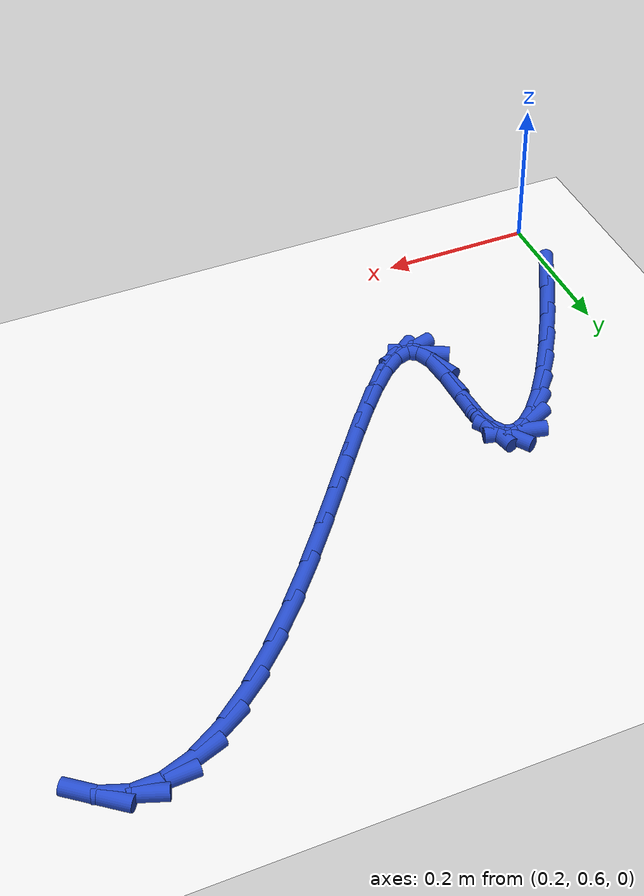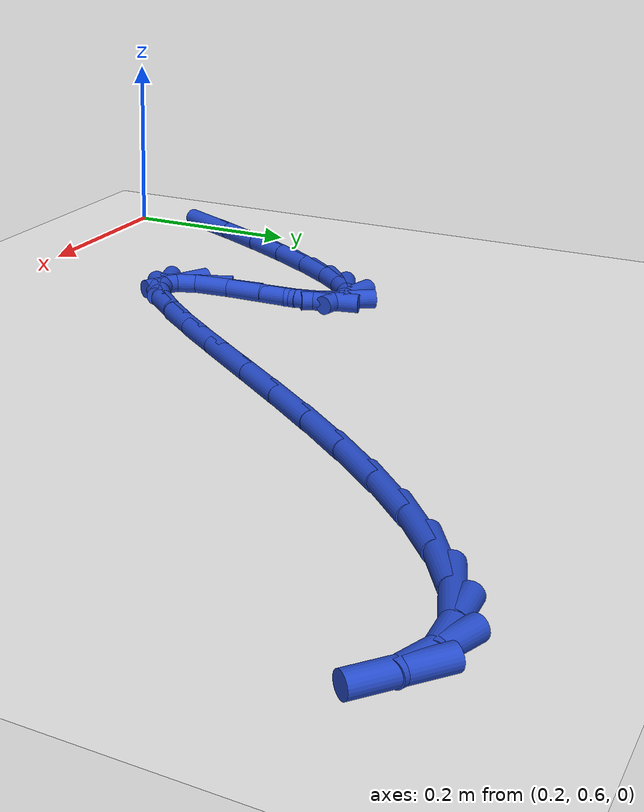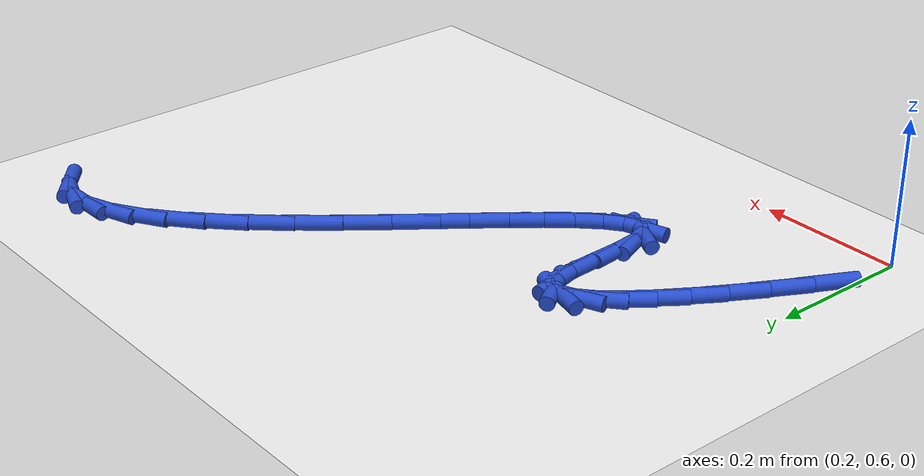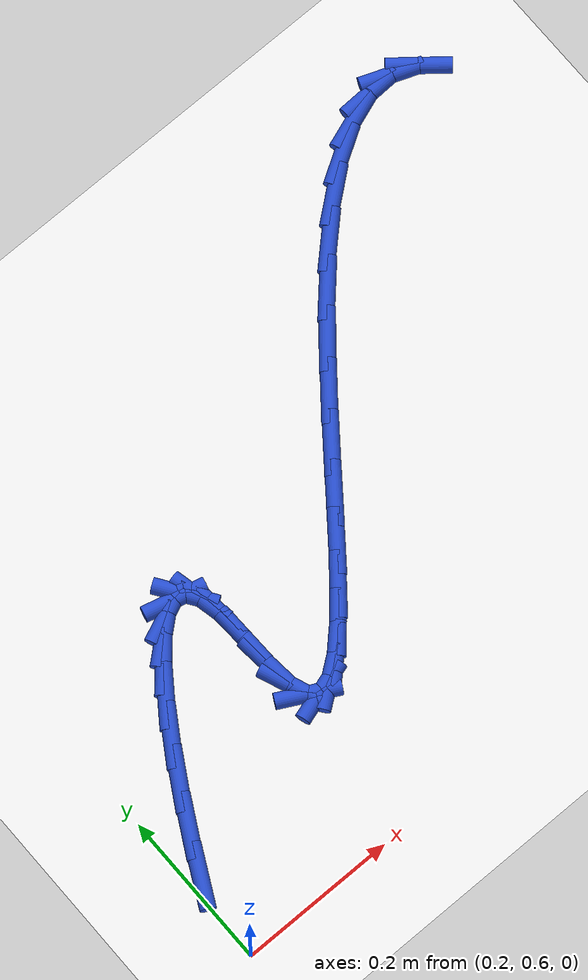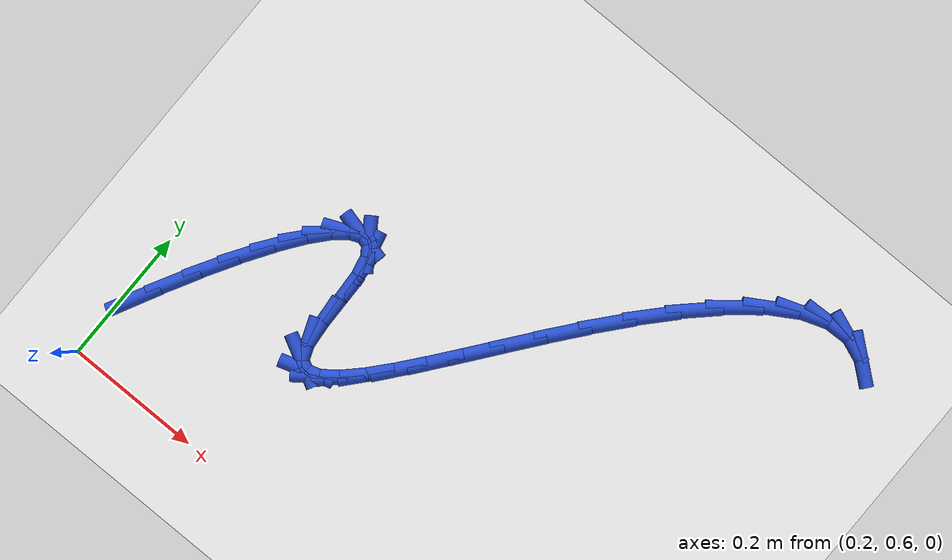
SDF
<sdf version="1.6">
 <world name="default">
  <model name="ground_plane">
   <static>1</static>
   <link name="link">
    <collision name="collision">
     <geometry><plane><normal>0 0 1</normal><size>100 100</size></plane></geometry>
     <surface><friction><ode><mu>100</mu><mu2>50</mu2></ode></friction></surface>
    </collision>
    <visual name="visual">
     <cast_shadows>0</cast_shadows>
     <geometry><plane><normal>0 0 1</normal><size>100 100</size></plane></geometry>
     <material>
      <script><uri>file://media/materials/scripts/gazebo.material</uri><name>Gazebo/WhiteGlow</name></script>
     </material>
    </visual>
   </link>
  </model>
  <model name="line">
   <link name="link_15">
    <pose>0.2144821899932202 0.7067453006263108 0.01 0 1.57 1.0963529561204812</pose>
    <collision name="collision">
     <geometry><cylinder><radius>0.01</radius><length>0.08</length></cylinder></geometry>
    </collision>
    <visual name="visual">
     <material>
      <script><name>Gazebo/Blue</name><uri>file://media/materials/scripts/gazebo.material</uri></script>
     </material>
     <geometry><cylinder><radius>0.01</radius><length>0.08</length></cylinder></geometry>
    </visual>
   </link>
   <link name="link_16">
    <pose>0.24165540462102134 0.7596558981493867 0.01 0 1.57 1.0709503467464274</pose>
    <collision name="collision">
     <geometry><cylinder><radius>0.01</radius><length>0.08</length></cylinder></geometry>
    </collision>
    <visual name="visual">
     <material>
      <script><name>Gazebo/Blue</name><uri>file://media/materials/scripts/gazebo.material</uri></script>
     </material>
     <geometry><cylinder><radius>0.01</radius><length>0.08</length></cylinder></geometry>
    </visual>
   </link>
   <link name="link_17">
    <pose>0.26856329604825185 0.8089284988810272 0.01 0 1.57 1.039733929315308</pose>
    <collision name="collision">
     <geometry><cylinder><radius>0.01</radius><length>0.08</length></cylinder></geometry>
    </collision>
    <visual name="visual">
     <material>
      <script><name>Gazebo/Blue</name><uri>file://media/materials/scripts/gazebo.material</uri></script>
     </material>
     <geometry><cylinder><radius>0.01</radius><length>0.08</length></cylinder></geometry>
    </visual>
   </link>
   <link name="link_18">
    <pose>0.2947966161264923 0.8535927408835512 0.01 0 1.57 0.9990408790225557</pose>
    <collision name="collision">
     <geometry><cylinder><radius>0.01</radius><length>0.08</length></cylinder></geometry>
    </collision>
    <visual name="visual">
     <material>
      <script><name>Gazebo/Blue</name><uri>file://media/materials/scripts/gazebo.material</uri></script>
     </material>
     <geometry><cylinder><radius>0.01</radius><length>0.08</length></cylinder></geometry>
    </visual>
   </link>
   <link name="link_19">
    <pose>0.319946116707323 0.8926782622192776 0.01 0 1.57 0.9421293417932</pose>
    <collision name="collision">
     <geometry><cylinder><radius>0.01</radius><length>0.08</length></cylinder></geometry>
    </collision>
    <visual name="visual">
     <material>
      <script><name>Gazebo/Blue</name><uri>file://media/materials/scripts/gazebo.material</uri></script>
     </material>
     <geometry><cylinder><radius>0.01</radius><length>0.08</length></cylinder></geometry>
    </visual>
   </link>
   <link name="link_20">
    <pose>0.3436025496423244 0.9252147009505244 0.01 0 1.57 0.8550479765291604</pose>
    <collision name="collision">
     <geometry><cylinder><radius>0.01</radius><length>0.08</length></cylinder></geometry>
    </collision>
    <visual name="visual">
     <material>
      <script><name>Gazebo/Blue</name><uri>file://media/materials/scripts/gazebo.material</uri></script>
     </material>
     <geometry><cylinder><radius>0.01</radius><length>0.08</length></cylinder></geometry>
    </visual>
   </link>
   <link name="link_21">
    <pose>0.36535666678307677 0.9502316951396105 0.01 0 1.57 0.7045244455720923</pose>
    <collision name="collision">
     <geometry><cylinder><radius>0.01</radius><length>0.08</length></cylinder></geometry>
    </collision>
    <visual name="visual">
     <material>
      <script><name>Gazebo/Blue</name><uri>file://media/materials/scripts/gazebo.material</uri></script>
     </material>
     <geometry><cylinder><radius>0.01</radius><length>0.08</length></cylinder></geometry>
    </visual>
   </link>
   <link name="link_22">
    <pose>0.38479921998116073 0.9667588828488549 0.01 0 1.57 0.39985695043769515</pose>
    <collision name="collision">
     <geometry><cylinder><radius>0.01</radius><length>0.08</length></cylinder></geometry>
    </collision>
    <visual name="visual">
     <material>
      <script><name>Gazebo/Blue</name><uri>file://media/materials/scripts/gazebo.material</uri></script>
     </material>
     <geometry><cylinder><radius>0.01</radius><length>0.08</length></cylinder></geometry>
    </visual>
   </link>
   <link name="link_23">
    <pose>0.4015209610881564 0.9738259021405755 0.01 0 1.57 -0.2425945336687161</pose>
    <collision name="collision">
     <geometry><cylinder><radius>0.01</radius><length>0.08</length></cylinder></geometry>
    </collision>
    <visual name="visual">
     <material>
      <script><name>Gazebo/Blue</name><uri>file://media/materials/scripts/gazebo.material</uri></script>
     </material>
     <geometry><cylinder><radius>0.01</radius><length>0.08</length></cylinder></geometry>
    </visual>
   </link>
   <link name="link_24">
    <pose>0.4151126419556447 0.9704623910770924 0.01 0 1.57 -0.973037345270926</pose>
    <collision name="collision">
     <geometry><cylinder><radius>0.01</radius><length>0.08</length></cylinder></geometry>
    </collision>
    <visual name="visual">
     <material>
      <script><name>Gazebo/Blue</name><uri>file://media/materials/scripts/gazebo.material</uri></script>
     </material>
     <geometry><cylinder><radius>0.01</radius><length>0.08</length></cylinder></geometry>
    </visual>
   </link>
   <link name="link_25">
    <pose>0.4251650144352053 0.9556979877207223 0.01 0 1.57 -1.3495417607274645</pose>
    <collision name="collision">
     <geometry><cylinder><radius>0.01</radius><length>0.08</length></cylinder></geometry>
    </collision>
    <visual name="visual">
     <material>
      <script><name>Gazebo/Blue</name><uri>file://media/materials/scripts/gazebo.material</uri></script>
     </material>
     <geometry><cylinder><radius>0.01</radius><length>0.08</length></cylinder></geometry>
    </visual>
   </link>
   <link name="link_26">
    <pose>0.431268830378419 0.9285623301337849 0.01 0 1.57 -1.5131103198542823</pose>
    <collision name="collision">
     <geometry><cylinder><radius>0.01</radius><length>0.08</length></cylinder></geometry>
    </collision>
    <visual name="visual">
     <material>
      <script><name>Gazebo/Blue</name><uri>file://media/materials/scripts/gazebo.material</uri></script>
     </material>
     <geometry><cylinder><radius>0.01</radius><length>0.08</length></cylinder></geometry>
    </visual>
   </link>
   <link name="link_27">
    <pose>0.43352125430816163 0.8895593717146986 0.01 0 1.57 -1.54504843713999</pose>
    <collision name="collision">
     <geometry><cylinder><radius>0.01</radius><length>0.08</length></cylinder></geometry>
    </collision>
    <visual name="visual">
     <material>
      <script><name>Gazebo/Blue</name><uri>file://media/materials/scripts/gazebo.material</uri></script>
     </material>
     <geometry><cylinder><radius>0.01</radius><length>0.08</length></cylinder></geometry>
    </visual>
   </link>
   <link name="link_28">
    <pose>0.4346231514541276 0.846773199812439 0.01 0 1.57 -1.4744182706913913</pose>
    <collision name="collision">
     <geometry><cylinder><radius>0.01</radius><length>0.08</length></cylinder></geometry>
    </collision>
    <visual name="visual">
     <material>
      <script><name>Gazebo/Blue</name><uri>file://media/materials/scripts/gazebo.material</uri></script>
     </material>
     <geometry><cylinder><radius>0.01</radius><length>0.08</length></cylinder></geometry>
    </visual>
   </link>
   <link name="link_29">
    <pose>0.4381091562238803 0.8107151519353102 0.01 0 1.57 -1.1935511905397567</pose>
    <collision name="collision">
     <geometry><cylinder><radius>0.01</radius><length>0.08</length></cylinder></geometry>
    </collision>
    <visual name="visual">
     <material>
      <script><name>Gazebo/Blue</name><uri>file://media/materials/scripts/gazebo.material</uri></script>
     </material>
     <geometry><cylinder><radius>0.01</radius><length>0.08</length></cylinder></geometry>
    </visual>
   </link>
   <link name="link_30">
    <pose>0.44663193816883195 0.7892050272643987 0.01 0 1.57 -0.48249954833357417</pose>
    <collision name="collision">
     <geometry><cylinder><radius>0.01</radius><length>0.08</length></cylinder></geometry>
    </collision>
    <visual name="visual">
     <material>
      <script><name>Gazebo/Blue</name><uri>file://media/materials/scripts/gazebo.material</uri></script>
     </material>
     <geometry><cylinder><radius>0.01</radius><length>0.08</length></cylinder></geometry>
    </visual>
   </link>
   <link name="link_31">
    <pose>0.46022929452914607 0.7820828407072101 0.01 0 1.57 0.29980054642361725</pose>
    <collision name="collision">
     <geometry><cylinder><radius>0.01</radius><length>0.08</length></cylinder></geometry>
    </collision>
    <visual name="visual">
     <material>
      <script><name>Gazebo/Blue</name><uri>file://media/materials/scripts/gazebo.material</uri></script>
     </material>
     <geometry><cylinder><radius>0.01</radius><length>0.08</length></cylinder></geometry>
    </visual>
   </link>
   <link name="link_32">
    <pose>0.47845689958031923 0.7877173164949023 0.01 0 1.57 0.6420637533860102</pose>
    <collision name="collision">
     <geometry><cylinder><radius>0.01</radius><length>0.08</length></cylinder></geometry>
    </collision>
    <visual name="visual">
     <material>
      <script><name>Gazebo/Blue</name><uri>file://media/materials/scripts/gazebo.material</uri></script>
     </material>
     <geometry><cylinder><radius>0.01</radius><length>0.08</length></cylinder></geometry>
    </visual>
   </link>
   <link name="link_33">
    <pose>0.5008704275978486 0.8044771788586335 0.01 0 1.57 0.7872842441982141</pose>
    <collision name="collision">
     <geometry><cylinder><radius>0.01</radius><length>0.08</length></cylinder></geometry>
    </collision>
    <visual name="visual">
     <material>
      <script><name>Gazebo/Blue</name><uri>file://media/materials/scripts/gazebo.material</uri></script>
     </material>
     <geometry><cylinder><radius>0.01</radius><length>0.08</length></cylinder></geometry>
    </visual>
   </link>
   <link name="link_34">
    <pose>0.5270255528572307 0.830731152029561 0.01 0 1.57 0.8586422349914501</pose>
    <collision name="collision">
     <geometry><cylinder><radius>0.01</radius><length>0.08</length></cylinder></geometry>
    </collision>
    <visual name="visual">
     <material>
      <script><name>Gazebo/Blue</name><uri>file://media/materials/scripts/gazebo.material</uri></script>
     </material>
     <geometry><cylinder><radius>0.01</radius><length>0.08</length></cylinder></geometry>
    </visual>
   </link>
   <link name="link_35">
    <pose>0.5564779496339628 0.8648479602388438 0.01 0 1.57 0.8956527932185162</pose>
    <collision name="collision">
     <geometry><cylinder><radius>0.01</radius><length>0.08</length></cylinder></geometry>
    </collision>
    <visual name="visual">
     <material>
      <script><name>Gazebo/Blue</name><uri>file://media/materials/scripts/gazebo.material</uri></script>
     </material>
     <geometry><cylinder><radius>0.01</radius><length>0.08</length></cylinder></geometry>
    </visual>
   </link>
   <link name="link_36">
    <pose>0.5887832922035409 0.9051963277176385 0.01 0 1.57 0.9131736409051385</pose>
    <collision name="collision">
     <geometry><cylinder><radius>0.01</radius><length>0.08</length></cylinder></geometry>
    </collision>
    <visual name="visual">
     <material>
      <script><name>Gazebo/Blue</name><uri>file://media/materials/scripts/gazebo.material</uri></script>
     </material>
     <geometry><cylinder><radius>0.01</radius><length>0.08</length></cylinder></geometry>
    </visual>
   </link>
   <link name="link_37">
    <pose>0.6234972548414629 0.9501449786971046 0.01 0 1.57 0.9174844662995174</pose>
    <collision name="collision">
     <geometry><cylinder><radius>0.01</radius><length>0.08</length></cylinder></geometry>
    </collision>
    <visual name="visual">
     <material>
      <script><name>Gazebo/Blue</name><uri>file://media/materials/scripts/gazebo.material</uri></script>
     </material>
     <geometry><cylinder><radius>0.01</radius><length>0.08</length></cylinder></geometry>
    </visual>
   </link>
   <link name="link_38">
    <pose>0.6601755118232249 0.9980626374083987 0.01 0 1.57 0.9111654602945956</pose>
    <collision name="collision">
     <geometry><cylinder><radius>0.01</radius><length>0.08</length></cylinder></geometry>
    </collision>
    <visual name="visual">
     <material>
      <script><name>Gazebo/Blue</name><uri>file://media/materials/scripts/gazebo.material</uri></script>
     </material>
     <geometry><cylinder><radius>0.01</radius><length>0.08</length></cylinder></geometry>
    </visual>
   </link>
   <link name="link_39">
    <pose>0.6983737374243241 1.0473180280826797 0.01 0 1.57 0.8947566819144622</pose>
    <collision name="collision">
     <geometry><cylinder><radius>0.01</radius><length>0.08</length></cylinder></geometry>
    </collision>
    <visual name="visual">
     <material>
      <script><name>Gazebo/Blue</name><uri>file://media/materials/scripts/gazebo.material</uri></script>
     </material>
     <geometry><cylinder><radius>0.01</radius><length>0.08</length></cylinder></geometry>
    </visual>
   </link>
   <link name="link_40">
    <pose>0.7376476059202572 1.0962798749511051 0.01 0 1.57 0.8672445904938844</pose>
    <collision name="collision">
     <geometry><cylinder><radius>0.01</radius><length>0.08</length></cylinder></geometry>
    </collision>
    <visual name="visual">
     <material>
      <script><name>Gazebo/Blue</name><uri>file://media/materials/scripts/gazebo.material</uri></script>
     </material>
     <geometry><cylinder><radius>0.01</radius><length>0.08</length></cylinder></geometry>
    </visual>
   </link>
   <link name="link_41">
    <pose>0.7775527915865211 1.1433169022448335 0.01 0 1.57 0.8259243502828172</pose>
    <collision name="collision">
     <geometry><cylinder><radius>0.01</radius><length>0.08</length></cylinder></geometry>
    </collision>
    <visual name="visual">
     <material>
      <script><name>Gazebo/Blue</name><uri>file://media/materials/scripts/gazebo.material</uri></script>
     </material>
     <geometry><cylinder><radius>0.01</radius><length>0.08</length></cylinder></geometry>
    </visual>
   </link>
   <link name="link_42">
    <pose>0.8176449686986123 1.1867978341950216 0.01 0 1.57 0.7656731718907847</pose>
    <collision name="collision">
     <geometry><cylinder><radius>0.01</radius><length>0.08</length></cylinder></geometry>
    </collision>
    <visual name="visual">
     <material>
      <script><name>Gazebo/Blue</name><uri>file://media/materials/scripts/gazebo.material</uri></script>
     </material>
     <geometry><cylinder><radius>0.01</radius><length>0.08</length></cylinder></geometry>
    </visual>
   </link>
   <link name="link_43">
    <pose>0.8574798115320279 1.2250913950328284 0.01 0 1.57 0.6773588734244219</pose>
    <collision name="collision">
     <geometry><cylinder><radius>0.01</radius><length>0.08</length></cylinder></geometry>
    </collision>
    <visual name="visual">
     <material>
      <script><name>Gazebo/Blue</name><uri>file://media/materials/scripts/gazebo.material</uri></script>
     </material>
     <geometry><cylinder><radius>0.01</radius><length>0.08</length></cylinder></geometry>
    </visual>
   </link>
   <link name="link_44">
    <pose>0.8966129943622647 1.2565663089894115 0.01 0 1.57 0.5449110376335393</pose>
    <collision name="collision">
     <geometry><cylinder><radius>0.01</radius><length>0.08</length></cylinder></geometry>
    </collision>
    <visual name="visual">
     <material>
      <script><name>Gazebo/Blue</name><uri>file://media/materials/scripts/gazebo.material</uri></script>
     </material>
     <geometry><cylinder><radius>0.01</radius><length>0.08</length></cylinder></geometry>
    </visual>
   </link>
   <link name="link_45">
    <pose>0.9346001914648198 1.2795913002959292 0.01 0 1.57 0.3416808088666626</pose>
    <collision name="collision">
     <geometry><cylinder><radius>0.01</radius><length>0.08</length></cylinder></geometry>
    </collision>
    <visual name="visual">
     <material>
      <script><name>Gazebo/Blue</name><uri>file://media/materials/scripts/gazebo.material</uri></script>
     </material>
     <geometry><cylinder><radius>0.01</radius><length>0.08</length></cylinder></geometry>
    </visual>
   </link>
   <link name="link_46">
    <pose>0.97099707711519 1.2925350931835393 0.01 0 1.57 0.035818147539107156</pose>
    <collision name="collision">
     <geometry><cylinder><radius>0.01</radius><length>0.08</length></cylinder></geometry>
    </collision>
    <visual name="visual">
     <material>
      <script><name>Gazebo/Blue</name><uri>file://media/materials/scripts/gazebo.material</uri></script>
     </material>
     <geometry><cylinder><radius>0.01</radius><length>0.08</length></cylinder></geometry>
    </visual>
   </link>
   <link name="link_47">
    <pose>1.0053593255888715 1.2937664118833994 0.01 0 1.57 -0.36305883201565475</pose>
    <collision name="collision">
     <geometry><cylinder><radius>0.01</radius><length>0.08</length></cylinder></geometry>
    </collision>
    <visual name="visual">
     <material>
      <script><name>Gazebo/Blue</name><uri>file://media/materials/scripts/gazebo.material</uri></script>
     </material>
     <geometry><cylinder><radius>0.01</radius><length>0.08</length></cylinder></geometry>
    </visual>
   </link>
   <link name="link_48">
    <pose>1.0372426111613615 1.2816539806266678 0.01 0 1.57 -0.6841480375733638</pose>
    <collision name="collision">
     <geometry><cylinder><radius>0.01</radius><length>0.08</length></cylinder></geometry>
    </collision>
    <visual name="visual">
     <material>
      <script><name>Gazebo/Blue</name><uri>file://media/materials/scripts/gazebo.material</uri></script>
     </material>
     <geometry><cylinder><radius>0.01</radius><length>0.08</length></cylinder></geometry>
    </visual>
   </link>
  </model>
 </world>
</sdf>
